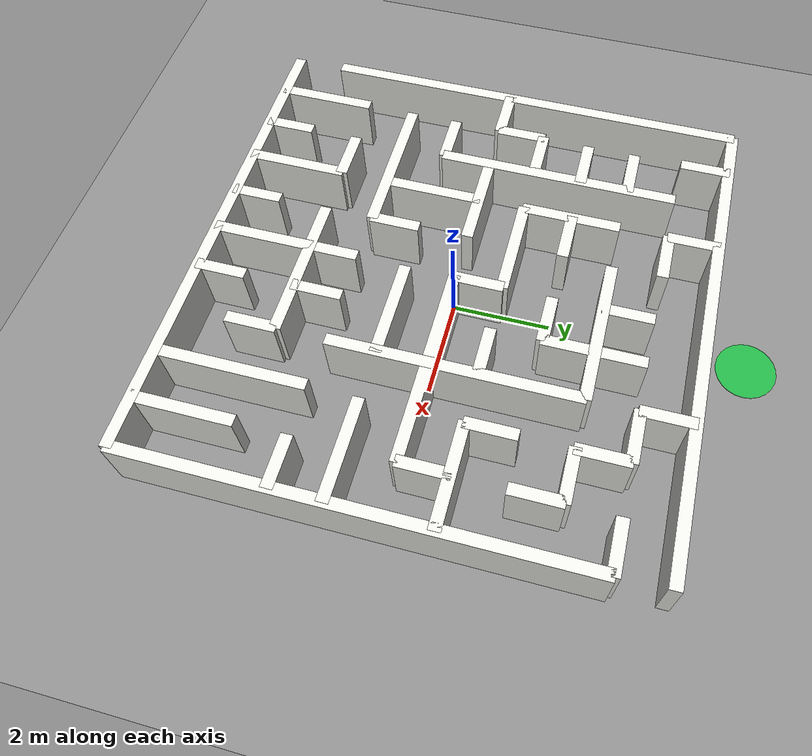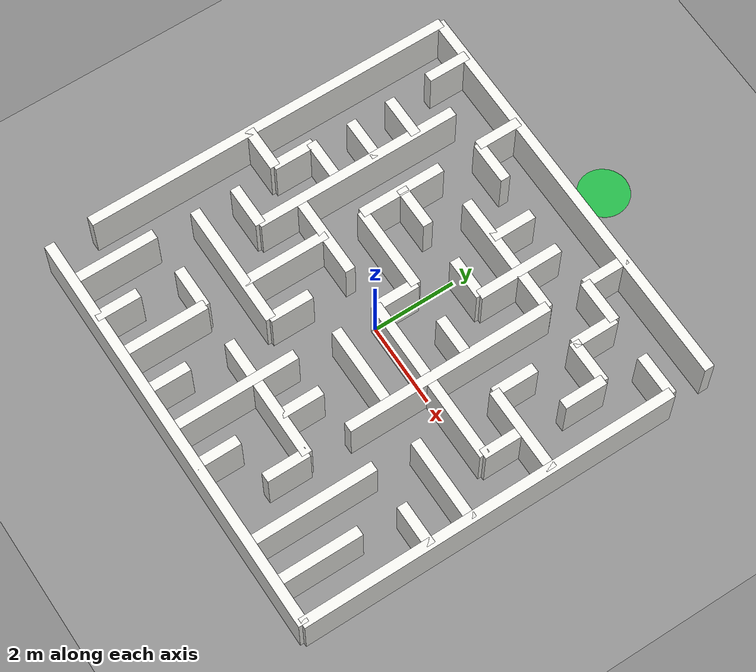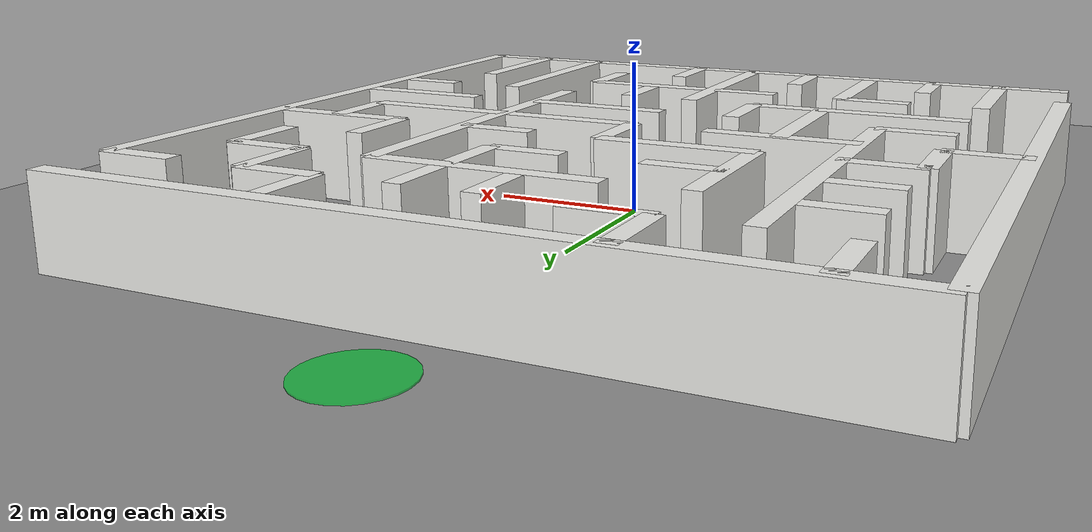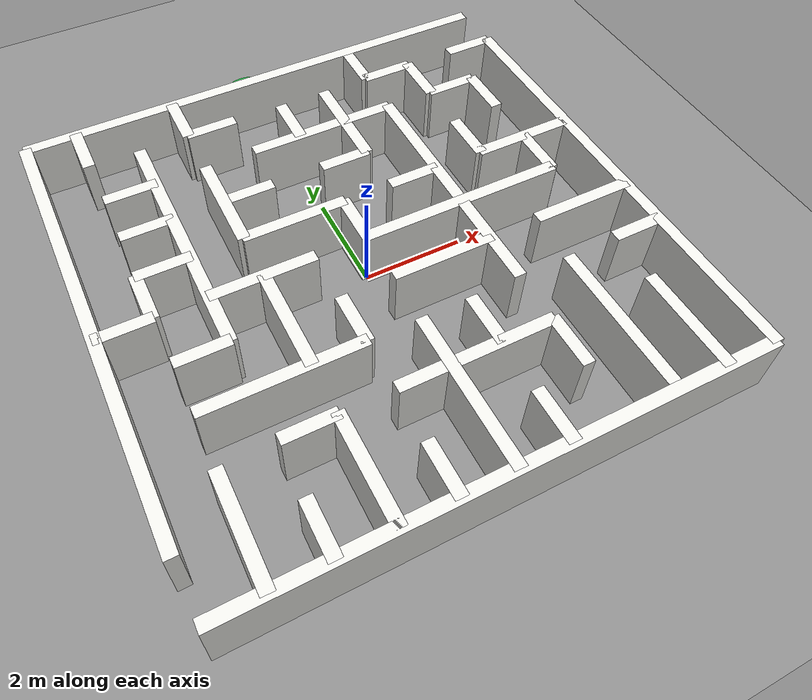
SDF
<sdf version="1.10">
 <world name="tugbot_maze_world_20260528_clean">
  <plugin name="gz::sim::systems::Physics" filename="gz-sim-physics-system"/>
  <plugin name="gz::sim::systems::UserCommands" filename="gz-sim-user-commands-system"/>
  <plugin name="gz::sim::systems::SceneBroadcaster" filename="gz-sim-scene-broadcaster-system"/>
  <plugin name="gz::sim::systems::Sensors" filename="gz-sim-sensors-system">
   <render_engine>ogre2</render_engine>
  </plugin>
  <plugin name="gz::sim::systems::Imu" filename="gz-sim-imu-system"/>
  <scene>
   <shadows>false</shadows>
   <ambient>0.55 0.55 0.55 1</ambient>
   <background>0.70 0.72 0.74 1</background>
  </scene>
  <physics name="3ms" type="ode">
   <max_step_size>0.003</max_step_size>
   <real_time_factor>1</real_time_factor>
   <real_time_update_rate>1000</real_time_update_rate>
  </physics>
  <gravity>0 0 -9.8</gravity>
  <atmosphere type="adiabatic"/>
  <model name="ground_plane">
   <static>true</static>
   <link name="link">
    <collision name="collision">
     <geometry><plane><normal>0 0 1</normal><size>1 1</size></plane></geometry>
    </collision>
    <visual name="visual">
     <geometry><plane><normal>0 0 1</normal><size>20 20</size></plane></geometry>
     <material><ambient>0.55 0.55 0.55 1</ambient><diffuse>0.55 0.55 0.55 1</diffuse></material>
    </visual>
   </link>
  </model>
  <model name="maze_exit_marker">
   <static>true</static>
   <pose>0.000 6.000 0.01 0 0 0</pose>
   <link name="link">
    <visual name="visual">
     <geometry><cylinder><radius>0.600</radius><length>0.02</length></cylinder></geometry>
     <material><ambient>0 0.8 0.2 0.7</ambient><diffuse>0 0.8 0.2 0.7</diffuse></material>
    </visual>
   </link>
  </model>
  <model name="maze_wall_outer_001_outer_001">
   <static>true</static>
   <pose>-0.017 4.997 0.600 0 0 0</pose>
   <link name="link">
    <collision name="collision"><geometry><box><size>10.028 0.240 1.200</size></box></geometry></collision>
    <visual name="visual">
     <geometry><box><size>10.028 0.240 1.200</size></box></geometry>
     <material>
      <ambient>0.92 0.92 0.90 1</ambient>
      <diffuse>0.92 0.92 0.90 1</diffuse>
      <specular>0.2 0.2 0.2 1</specular>
     </material>
    </visual>
   </link>
  </model>
  <model name="maze_wall_seg_002_h_001">
   <static>true</static>
   <pose>-1.504 3.994 0.600 0 0 0</pose>
   <link name="link">
    <collision name="collision"><geometry><box><size>1.036 0.240 1.200</size></box></geometry></collision>
    <visual name="visual">
     <geometry><box><size>1.036 0.240 1.200</size></box></geometry>
     <material>
      <ambient>0.92 0.92 0.90 1</ambient>
      <diffuse>0.92 0.92 0.90 1</diffuse>
      <specular>0.2 0.2 0.2 1</specular>
     </material>
    </visual>
   </link>
  </model>
  <model name="maze_wall_seg_003_h_002">
   <static>true</static>
   <pose>2.490 3.994 0.600 0 0 0</pose>
   <link name="link">
    <collision name="collision"><geometry><box><size>1.070 0.240 1.200</size></box></geometry></collision>
    <visual name="visual">
     <geometry><box><size>1.070 0.240 1.200</size></box></geometry>
     <material>
      <ambient>0.92 0.92 0.90 1</ambient>
      <diffuse>0.92 0.92 0.90 1</diffuse>
      <specular>0.2 0.2 0.2 1</specular>
     </material>
    </visual>
   </link>
  </model>
  <model name="maze_wall_seg_004_h_003">
   <static>true</static>
   <pose>4.513 3.994 0.600 0 0 0</pose>
   <link name="link">
    <collision name="collision"><geometry><box><size>1.036 0.240 1.200</size></box></geometry></collision>
    <visual name="visual">
     <geometry><box><size>1.036 0.240 1.200</size></box></geometry>
     <material>
      <ambient>0.92 0.92 0.90 1</ambient>
      <diffuse>0.92 0.92 0.90 1</diffuse>
      <specular>0.2 0.2 0.2 1</specular>
     </material>
    </visual>
   </link>
  </model>
  <model name="maze_wall_seg_005_h_004">
   <static>true</static>
   <pose>-3.476 2.992 0.600 0 0 0</pose>
   <link name="link">
    <collision name="collision"><geometry><box><size>1.036 0.240 1.200</size></box></geometry></collision>
    <visual name="visual">
     <geometry><box><size>1.036 0.240 1.200</size></box></geometry>
     <material>
      <ambient>0.92 0.92 0.90 1</ambient>
      <diffuse>0.92 0.92 0.90 1</diffuse>
      <specular>0.2 0.2 0.2 1</specular>
     </material>
    </visual>
   </link>
  </model>
  <model name="maze_wall_seg_006_h_005">
   <static>true</static>
   <pose>0.518 2.992 0.600 0 0 0</pose>
   <link name="link">
    <collision name="collision"><geometry><box><size>3.008 0.240 1.200</size></box></geometry></collision>
    <visual name="visual">
     <geometry><box><size>3.008 0.240 1.200</size></box></geometry>
     <material>
      <ambient>0.92 0.92 0.90 1</ambient>
      <diffuse>0.92 0.92 0.90 1</diffuse>
      <specular>0.2 0.2 0.2 1</specular>
     </material>
    </visual>
   </link>
  </model>
  <model name="maze_wall_seg_007_h_006">
   <static>true</static>
   <pose>3.493 2.992 0.600 0 0 0</pose>
   <link name="link">
    <collision name="collision"><geometry><box><size>1.070 0.240 1.200</size></box></geometry></collision>
    <visual name="visual">
     <geometry><box><size>1.070 0.240 1.200</size></box></geometry>
     <material>
      <ambient>0.92 0.92 0.90 1</ambient>
      <diffuse>0.92 0.92 0.90 1</diffuse>
      <specular>0.2 0.2 0.2 1</specular>
     </material>
    </visual>
   </link>
  </model>
  <model name="maze_wall_seg_008_h_007">
   <static>true</static>
   <pose>-3.476 1.989 0.600 0 0 0</pose>
   <link name="link">
    <collision name="collision"><geometry><box><size>1.036 0.240 1.200</size></box></geometry></collision>
    <visual name="visual">
     <geometry><box><size>1.036 0.240 1.200</size></box></geometry>
     <material>
      <ambient>0.92 0.92 0.90 1</ambient>
      <diffuse>0.92 0.92 0.90 1</diffuse>
      <specular>0.2 0.2 0.2 1</specular>
     </material>
    </visual>
   </link>
  </model>
  <model name="maze_wall_seg_009_h_008">
   <static>true</static>
   <pose>-1.504 1.989 0.600 0 0 0</pose>
   <link name="link">
    <collision name="collision"><geometry><box><size>1.036 0.240 1.200</size></box></geometry></collision>
    <visual name="visual">
     <geometry><box><size>1.036 0.240 1.200</size></box></geometry>
     <material>
      <ambient>0.92 0.92 0.90 1</ambient>
      <diffuse>0.92 0.92 0.90 1</diffuse>
      <specular>0.2 0.2 0.2 1</specular>
     </material>
    </visual>
   </link>
  </model>
  <model name="maze_wall_seg_010_h_009">
   <static>true</static>
   <pose>0.518 1.989 0.600 0 0 0</pose>
   <link name="link">
    <collision name="collision"><geometry><box><size>1.003 0.240 1.200</size></box></geometry></collision>
    <visual name="visual">
     <geometry><box><size>1.003 0.240 1.200</size></box></geometry>
     <material>
      <ambient>0.92 0.92 0.90 1</ambient>
      <diffuse>0.92 0.92 0.90 1</diffuse>
      <specular>0.2 0.2 0.2 1</specular>
     </material>
    </visual>
   </link>
  </model>
  <model name="maze_wall_seg_011_h_010">
   <static>true</static>
   <pose>-3.493 0.986 0.600 0 0 0</pose>
   <link name="link">
    <collision name="collision"><geometry><box><size>1.070 0.240 1.200</size></box></geometry></collision>
    <visual name="visual">
     <geometry><box><size>1.070 0.240 1.200</size></box></geometry>
     <material>
      <ambient>0.92 0.92 0.90 1</ambient>
      <diffuse>0.92 0.92 0.90 1</diffuse>
      <specular>0.2 0.2 0.2 1</specular>
     </material>
    </visual>
   </link>
  </model>
  <model name="maze_wall_seg_012_h_011">
   <static>true</static>
   <pose>-0.986 0.986 0.600 0 0 0</pose>
   <link name="link">
    <collision name="collision"><geometry><box><size>2.072 0.240 1.200</size></box></geometry></collision>
    <visual name="visual">
     <geometry><box><size>2.072 0.240 1.200</size></box></geometry>
     <material>
      <ambient>0.92 0.92 0.90 1</ambient>
      <diffuse>0.92 0.92 0.90 1</diffuse>
      <specular>0.2 0.2 0.2 1</specular>
     </material>
    </visual>
   </link>
  </model>
  <model name="maze_wall_seg_013_h_012">
   <static>true</static>
   <pose>1.504 0.986 0.600 0 0 0</pose>
   <link name="link">
    <collision name="collision"><geometry><box><size>1.036 0.240 1.200</size></box></geometry></collision>
    <visual name="visual">
     <geometry><box><size>1.036 0.240 1.200</size></box></geometry>
     <material>
      <ambient>0.92 0.92 0.90 1</ambient>
      <diffuse>0.92 0.92 0.90 1</diffuse>
      <specular>0.2 0.2 0.2 1</specular>
     </material>
    </visual>
   </link>
  </model>
  <model name="maze_wall_seg_014_h_013">
   <static>true</static>
   <pose>3.994 0.986 0.600 0 0 0</pose>
   <link name="link">
    <collision name="collision"><geometry><box><size>2.072 0.240 1.200</size></box></geometry></collision>
    <visual name="visual">
     <geometry><box><size>2.072 0.240 1.200</size></box></geometry>
     <material>
      <ambient>0.92 0.92 0.90 1</ambient>
      <diffuse>0.92 0.92 0.90 1</diffuse>
      <specular>0.2 0.2 0.2 1</specular>
     </material>
    </visual>
   </link>
  </model>
  <model name="maze_wall_seg_015_h_014">
   <static>true</static>
   <pose>-4.496 0.017 0.600 0 0 0</pose>
   <link name="link">
    <collision name="collision"><geometry><box><size>1.070 0.240 1.200</size></box></geometry></collision>
    <visual name="visual">
     <geometry><box><size>1.070 0.240 1.200</size></box></geometry>
     <material>
      <ambient>0.92 0.92 0.90 1</ambient>
      <diffuse>0.92 0.92 0.90 1</diffuse>
      <specular>0.2 0.2 0.2 1</specular>
     </material>
    </visual>
   </link>
  </model>
  <model name="maze_wall_seg_016_h_015">
   <static>true</static>
   <pose>-2.006 0.017 0.600 0 0 0</pose>
   <link name="link">
    <collision name="collision"><geometry><box><size>2.039 0.240 1.200</size></box></geometry></collision>
    <visual name="visual">
     <geometry><box><size>2.039 0.240 1.200</size></box></geometry>
     <material>
      <ambient>0.92 0.92 0.90 1</ambient>
      <diffuse>0.92 0.92 0.90 1</diffuse>
      <specular>0.2 0.2 0.2 1</specular>
     </material>
    </visual>
   </link>
  </model>
  <model name="maze_wall_seg_017_h_016">
   <static>true</static>
   <pose>2.006 0.017 0.600 0 0 0</pose>
   <link name="link">
    <collision name="collision"><geometry><box><size>4.045 0.240 1.200</size></box></geometry></collision>
    <visual name="visual">
     <geometry><box><size>4.045 0.240 1.200</size></box></geometry>
     <material>
      <ambient>0.92 0.92 0.90 1</ambient>
      <diffuse>0.92 0.92 0.90 1</diffuse>
      <specular>0.2 0.2 0.2 1</specular>
     </material>
    </visual>
   </link>
  </model>
  <model name="maze_wall_seg_018_h_017">
   <static>true</static>
   <pose>-3.476 -0.986 0.600 0 0 0</pose>
   <link name="link">
    <collision name="collision"><geometry><box><size>1.036 0.240 1.200</size></box></geometry></collision>
    <visual name="visual">
     <geometry><box><size>1.036 0.240 1.200</size></box></geometry>
     <material>
      <ambient>0.92 0.92 0.90 1</ambient>
      <diffuse>0.92 0.92 0.90 1</diffuse>
      <specular>0.2 0.2 0.2 1</specular>
     </material>
    </visual>
   </link>
  </model>
  <model name="maze_wall_seg_019_h_018">
   <static>true</static>
   <pose>1.019 -0.986 0.600 0 0 0</pose>
   <link name="link">
    <collision name="collision"><geometry><box><size>2.006 0.240 1.200</size></box></geometry></collision>
    <visual name="visual">
     <geometry><box><size>2.006 0.240 1.200</size></box></geometry>
     <material>
      <ambient>0.92 0.92 0.90 1</ambient>
      <diffuse>0.92 0.92 0.90 1</diffuse>
      <specular>0.2 0.2 0.2 1</specular>
     </material>
    </visual>
   </link>
  </model>
  <model name="maze_wall_seg_020_h_019">
   <static>true</static>
   <pose>4.011 -0.986 0.600 0 0 0</pose>
   <link name="link">
    <collision name="collision"><geometry><box><size>2.039 0.240 1.200</size></box></geometry></collision>
    <visual name="visual">
     <geometry><box><size>2.039 0.240 1.200</size></box></geometry>
     <material>
      <ambient>0.92 0.92 0.90 1</ambient>
      <diffuse>0.92 0.92 0.90 1</diffuse>
      <specular>0.2 0.2 0.2 1</specular>
     </material>
    </visual>
   </link>
  </model>
  <model name="maze_wall_seg_021_h_020">
   <static>true</static>
   <pose>-2.474 -1.989 0.600 0 0 0</pose>
   <link name="link">
    <collision name="collision"><geometry><box><size>3.042 0.240 1.200</size></box></geometry></collision>
    <visual name="visual">
     <geometry><box><size>3.042 0.240 1.200</size></box></geometry>
     <material>
      <ambient>0.92 0.92 0.90 1</ambient>
      <diffuse>0.92 0.92 0.90 1</diffuse>
      <specular>0.2 0.2 0.2 1</specular>
     </material>
    </visual>
   </link>
  </model>
  <model name="maze_wall_seg_022_h_021">
   <static>true</static>
   <pose>4.513 -1.989 0.600 0 0 0</pose>
   <link name="link">
    <collision name="collision"><geometry><box><size>1.036 0.240 1.200</size></box></geometry></collision>
    <visual name="visual">
     <geometry><box><size>1.036 0.240 1.200</size></box></geometry>
     <material>
      <ambient>0.92 0.92 0.90 1</ambient>
      <diffuse>0.92 0.92 0.90 1</diffuse>
      <specular>0.2 0.2 0.2 1</specular>
     </material>
    </visual>
   </link>
  </model>
  <model name="maze_wall_seg_023_h_022">
   <static>true</static>
   <pose>-2.474 -2.992 0.600 0 0 0</pose>
   <link name="link">
    <collision name="collision"><geometry><box><size>1.036 0.240 1.200</size></box></geometry></collision>
    <visual name="visual">
     <geometry><box><size>1.036 0.240 1.200</size></box></geometry>
     <material>
      <ambient>0.92 0.92 0.90 1</ambient>
      <diffuse>0.92 0.92 0.90 1</diffuse>
      <specular>0.2 0.2 0.2 1</specular>
     </material>
    </visual>
   </link>
  </model>
  <model name="maze_wall_seg_024_h_023">
   <static>true</static>
   <pose>0.518 -2.992 0.600 0 0 0</pose>
   <link name="link">
    <collision name="collision"><geometry><box><size>3.008 0.240 1.200</size></box></geometry></collision>
    <visual name="visual">
     <geometry><box><size>3.008 0.240 1.200</size></box></geometry>
     <material>
      <ambient>0.92 0.92 0.90 1</ambient>
      <diffuse>0.92 0.92 0.90 1</diffuse>
      <specular>0.2 0.2 0.2 1</specular>
     </material>
    </visual>
   </link>
  </model>
  <model name="maze_wall_outer_025_outer_002">
   <static>true</static>
   <pose>0.017 -4.997 0.600 0 0 0</pose>
   <link name="link">
    <collision name="collision"><geometry><box><size>10.028 0.240 1.200</size></box></geometry></collision>
    <visual name="visual">
     <geometry><box><size>10.028 0.240 1.200</size></box></geometry>
     <material>
      <ambient>0.92 0.92 0.90 1</ambient>
      <diffuse>0.92 0.92 0.90 1</diffuse>
      <specular>0.2 0.2 0.2 1</specular>
     </material>
    </visual>
   </link>
  </model>
  <model name="maze_wall_outer_026_outer_003">
   <static>true</static>
   <pose>-4.997 0.518 0.600 0 0 0</pose>
   <link name="link">
    <collision name="collision"><geometry><box><size>0.240 9.025 1.200</size></box></geometry></collision>
    <visual name="visual">
     <geometry><box><size>0.240 9.025 1.200</size></box></geometry>
     <material>
      <ambient>0.92 0.92 0.90 1</ambient>
      <diffuse>0.92 0.92 0.90 1</diffuse>
      <specular>0.2 0.2 0.2 1</specular>
     </material>
    </visual>
   </link>
  </model>
  <model name="maze_wall_seg_027_v_001">
   <static>true</static>
   <pose>-3.994 4.513 0.600 0 0 0</pose>
   <link name="link">
    <collision name="collision"><geometry><box><size>0.240 1.036 1.200</size></box></geometry></collision>
    <visual name="visual">
     <geometry><box><size>0.240 1.036 1.200</size></box></geometry>
     <material>
      <ambient>0.92 0.92 0.90 1</ambient>
      <diffuse>0.92 0.92 0.90 1</diffuse>
      <specular>0.2 0.2 0.2 1</specular>
     </material>
    </visual>
   </link>
  </model>
  <model name="maze_wall_seg_028_v_002">
   <static>true</static>
   <pose>-3.994 0.501 0.600 0 0 0</pose>
   <link name="link">
    <collision name="collision"><geometry><box><size>0.240 1.036 1.200</size></box></geometry></collision>
    <visual name="visual">
     <geometry><box><size>0.240 1.036 1.200</size></box></geometry>
     <material>
      <ambient>0.92 0.92 0.90 1</ambient>
      <diffuse>0.92 0.92 0.90 1</diffuse>
      <specular>0.2 0.2 0.2 1</specular>
     </material>
    </visual>
   </link>
  </model>
  <model name="maze_wall_seg_029_v_003">
   <static>true</static>
   <pose>-3.994 -4.011 0.600 0 0 0</pose>
   <link name="link">
    <collision name="collision"><geometry><box><size>0.240 2.039 1.200</size></box></geometry></collision>
    <visual name="visual">
     <geometry><box><size>0.240 2.039 1.200</size></box></geometry>
     <material>
      <ambient>0.92 0.92 0.90 1</ambient>
      <diffuse>0.92 0.92 0.90 1</diffuse>
      <specular>0.2 0.2 0.2 1</specular>
     </material>
    </visual>
   </link>
  </model>
  <model name="maze_wall_seg_030_v_004">
   <static>true</static>
   <pose>-2.992 1.487 0.600 0 0 0</pose>
   <link name="link">
    <collision name="collision"><geometry><box><size>0.240 5.014 1.200</size></box></geometry></collision>
    <visual name="visual">
     <geometry><box><size>0.240 5.014 1.200</size></box></geometry>
     <material>
      <ambient>0.92 0.92 0.90 1</ambient>
      <diffuse>0.92 0.92 0.90 1</diffuse>
      <specular>0.2 0.2 0.2 1</specular>
     </material>
    </visual>
   </link>
  </model>
  <model name="maze_wall_seg_031_v_005">
   <static>true</static>
   <pose>-2.992 -4.513 0.600 0 0 0</pose>
   <link name="link">
    <collision name="collision"><geometry><box><size>0.240 1.036 1.200</size></box></geometry></collision>
    <visual name="visual">
     <geometry><box><size>0.240 1.036 1.200</size></box></geometry>
     <material>
      <ambient>0.92 0.92 0.90 1</ambient>
      <diffuse>0.92 0.92 0.90 1</diffuse>
      <specular>0.2 0.2 0.2 1</specular>
     </material>
    </visual>
   </link>
  </model>
  <model name="maze_wall_seg_032_v_006">
   <static>true</static>
   <pose>-1.989 4.496 0.600 0 0 0</pose>
   <link name="link">
    <collision name="collision"><geometry><box><size>0.240 1.070 1.200</size></box></geometry></collision>
    <visual name="visual">
     <geometry><box><size>0.240 1.070 1.200</size></box></geometry>
     <material>
      <ambient>0.92 0.92 0.90 1</ambient>
      <diffuse>0.92 0.92 0.90 1</diffuse>
      <specular>0.2 0.2 0.2 1</specular>
     </material>
    </visual>
   </link>
  </model>
  <model name="maze_wall_seg_033_v_007">
   <static>true</static>
   <pose>-1.989 1.972 0.600 0 0 0</pose>
   <link name="link">
    <collision name="collision"><geometry><box><size>0.240 2.039 1.200</size></box></geometry></collision>
    <visual name="visual">
     <geometry><box><size>0.240 2.039 1.200</size></box></geometry>
     <material>
      <ambient>0.92 0.92 0.90 1</ambient>
      <diffuse>0.92 0.92 0.90 1</diffuse>
      <specular>0.2 0.2 0.2 1</specular>
     </material>
    </visual>
   </link>
  </model>
  <model name="maze_wall_seg_034_v_008">
   <static>true</static>
   <pose>-1.989 -0.986 0.600 0 0 0</pose>
   <link name="link">
    <collision name="collision"><geometry><box><size>0.240 2.072 1.200</size></box></geometry></collision>
    <visual name="visual">
     <geometry><box><size>0.240 2.072 1.200</size></box></geometry>
     <material>
      <ambient>0.92 0.92 0.90 1</ambient>
      <diffuse>0.92 0.92 0.90 1</diffuse>
      <specular>0.2 0.2 0.2 1</specular>
     </material>
    </visual>
   </link>
  </model>
  <model name="maze_wall_seg_035_v_009">
   <static>true</static>
   <pose>-1.989 -3.994 0.600 0 0 0</pose>
   <link name="link">
    <collision name="collision"><geometry><box><size>0.240 2.072 1.200</size></box></geometry></collision>
    <visual name="visual">
     <geometry><box><size>0.240 2.072 1.200</size></box></geometry>
     <material>
      <ambient>0.92 0.92 0.90 1</ambient>
      <diffuse>0.92 0.92 0.90 1</diffuse>
      <specular>0.2 0.2 0.2 1</specular>
     </material>
    </visual>
   </link>
  </model>
  <model name="maze_wall_seg_036_v_010">
   <static>true</static>
   <pose>-0.986 -1.504 0.600 0 0 0</pose>
   <link name="link">
    <collision name="collision"><geometry><box><size>0.240 1.036 1.200</size></box></geometry></collision>
    <visual name="visual">
     <geometry><box><size>0.240 1.036 1.200</size></box></geometry>
     <material>
      <ambient>0.92 0.92 0.90 1</ambient>
      <diffuse>0.92 0.92 0.90 1</diffuse>
      <specular>0.2 0.2 0.2 1</specular>
     </material>
    </visual>
   </link>
  </model>
  <model name="maze_wall_seg_037_v_011">
   <static>true</static>
   <pose>-0.986 -4.513 0.600 0 0 0</pose>
   <link name="link">
    <collision name="collision"><geometry><box><size>0.240 1.036 1.200</size></box></geometry></collision>
    <visual name="visual">
     <geometry><box><size>0.240 1.036 1.200</size></box></geometry>
     <material>
      <ambient>0.92 0.92 0.90 1</ambient>
      <diffuse>0.92 0.92 0.90 1</diffuse>
      <specular>0.2 0.2 0.2 1</specular>
     </material>
    </visual>
   </link>
  </model>
  <model name="maze_wall_seg_038_v_012">
   <static>true</static>
   <pose>0.017 3.476 0.600 0 0 0</pose>
   <link name="link">
    <collision name="collision"><geometry><box><size>0.240 1.036 1.200</size></box></geometry></collision>
    <visual name="visual">
     <geometry><box><size>0.240 1.036 1.200</size></box></geometry>
     <material>
      <ambient>0.92 0.92 0.90 1</ambient>
      <diffuse>0.92 0.92 0.90 1</diffuse>
      <specular>0.2 0.2 0.2 1</specular>
     </material>
    </visual>
   </link>
  </model>
  <model name="maze_wall_seg_039_v_013">
   <static>true</static>
   <pose>0.017 0.501 0.600 0 0 0</pose>
   <link name="link">
    <collision name="collision"><geometry><box><size>0.240 1.036 1.200</size></box></geometry></collision>
    <visual name="visual">
     <geometry><box><size>0.240 1.036 1.200</size></box></geometry>
     <material>
      <ambient>0.92 0.92 0.90 1</ambient>
      <diffuse>0.92 0.92 0.90 1</diffuse>
      <specular>0.2 0.2 0.2 1</specular>
     </material>
    </visual>
   </link>
  </model>
  <model name="maze_wall_seg_040_v_014">
   <static>true</static>
   <pose>0.017 -3.510 0.600 0 0 0</pose>
   <link name="link">
    <collision name="collision"><geometry><box><size>0.240 3.042 1.200</size></box></geometry></collision>
    <visual name="visual">
     <geometry><box><size>0.240 3.042 1.200</size></box></geometry>
     <material>
      <ambient>0.92 0.92 0.90 1</ambient>
      <diffuse>0.92 0.92 0.90 1</diffuse>
      <specular>0.2 0.2 0.2 1</specular>
     </material>
    </visual>
   </link>
  </model>
  <model name="maze_wall_seg_041_v_015">
   <static>true</static>
   <pose>0.986 2.975 0.600 0 0 0</pose>
   <link name="link">
    <collision name="collision"><geometry><box><size>0.240 2.039 1.200</size></box></geometry></collision>
    <visual name="visual">
     <geometry><box><size>0.240 2.039 1.200</size></box></geometry>
     <material>
      <ambient>0.92 0.92 0.90 1</ambient>
      <diffuse>0.92 0.92 0.90 1</diffuse>
      <specular>0.2 0.2 0.2 1</specular>
     </material>
    </visual>
   </link>
  </model>
  <model name="maze_wall_seg_042_v_016">
   <static>true</static>
   <pose>0.986 -2.507 0.600 0 0 0</pose>
   <link name="link">
    <collision name="collision"><geometry><box><size>0.240 1.036 1.200</size></box></geometry></collision>
    <visual name="visual">
     <geometry><box><size>0.240 1.036 1.200</size></box></geometry>
     <material>
      <ambient>0.92 0.92 0.90 1</ambient>
      <diffuse>0.92 0.92 0.90 1</diffuse>
      <specular>0.2 0.2 0.2 1</specular>
     </material>
    </visual>
   </link>
  </model>
  <model name="maze_wall_seg_043_v_017">
   <static>true</static>
   <pose>0.986 -4.513 0.600 0 0 0</pose>
   <link name="link">
    <collision name="collision"><geometry><box><size>0.240 1.036 1.200</size></box></geometry></collision>
    <visual name="visual">
     <geometry><box><size>0.240 1.036 1.200</size></box></geometry>
     <material>
      <ambient>0.92 0.92 0.90 1</ambient>
      <diffuse>0.92 0.92 0.90 1</diffuse>
      <specular>0.2 0.2 0.2 1</specular>
     </material>
    </visual>
   </link>
  </model>
  <model name="maze_wall_seg_044_v_018">
   <static>true</static>
   <pose>1.989 4.496 0.600 0 0 0</pose>
   <link name="link">
    <collision name="collision"><geometry><box><size>0.240 1.070 1.200</size></box></geometry></collision>
    <visual name="visual">
     <geometry><box><size>0.240 1.070 1.200</size></box></geometry>
     <material>
      <ambient>0.92 0.92 0.90 1</ambient>
      <diffuse>0.92 0.92 0.90 1</diffuse>
      <specular>0.2 0.2 0.2 1</specular>
     </material>
    </visual>
   </link>
  </model>
  <model name="maze_wall_seg_045_v_019">
   <static>true</static>
   <pose>1.989 0.518 0.600 0 0 0</pose>
   <link name="link">
    <collision name="collision"><geometry><box><size>0.240 5.014 1.200</size></box></geometry></collision>
    <visual name="visual">
     <geometry><box><size>0.240 5.014 1.200</size></box></geometry>
     <material>
      <ambient>0.92 0.92 0.90 1</ambient>
      <diffuse>0.92 0.92 0.90 1</diffuse>
      <specular>0.2 0.2 0.2 1</specular>
     </material>
    </visual>
   </link>
  </model>
  <model name="maze_wall_seg_046_v_020">
   <static>true</static>
   <pose>1.989 -3.476 0.600 0 0 0</pose>
   <link name="link">
    <collision name="collision"><geometry><box><size>0.240 1.036 1.200</size></box></geometry></collision>
    <visual name="visual">
     <geometry><box><size>0.240 1.036 1.200</size></box></geometry>
     <material>
      <ambient>0.92 0.92 0.90 1</ambient>
      <diffuse>0.92 0.92 0.90 1</diffuse>
      <specular>0.2 0.2 0.2 1</specular>
     </material>
    </visual>
   </link>
  </model>
  <model name="maze_wall_seg_047_v_021">
   <static>true</static>
   <pose>2.992 3.493 0.600 0 0 0</pose>
   <link name="link">
    <collision name="collision"><geometry><box><size>0.240 1.070 1.200</size></box></geometry></collision>
    <visual name="visual">
     <geometry><box><size>0.240 1.070 1.200</size></box></geometry>
     <material>
      <ambient>0.92 0.92 0.90 1</ambient>
      <diffuse>0.92 0.92 0.90 1</diffuse>
      <specular>0.2 0.2 0.2 1</specular>
     </material>
    </visual>
   </link>
  </model>
  <model name="maze_wall_seg_048_v_022">
   <static>true</static>
   <pose>2.992 1.471 0.600 0 0 0</pose>
   <link name="link">
    <collision name="collision"><geometry><box><size>0.240 1.036 1.200</size></box></geometry></collision>
    <visual name="visual">
     <geometry><box><size>0.240 1.036 1.200</size></box></geometry>
     <material>
      <ambient>0.92 0.92 0.90 1</ambient>
      <diffuse>0.92 0.92 0.90 1</diffuse>
      <specular>0.2 0.2 0.2 1</specular>
     </material>
    </visual>
   </link>
  </model>
  <model name="maze_wall_seg_049_v_023">
   <static>true</static>
   <pose>2.992 -3.510 0.600 0 0 0</pose>
   <link name="link">
    <collision name="collision"><geometry><box><size>0.240 3.042 1.200</size></box></geometry></collision>
    <visual name="visual">
     <geometry><box><size>0.240 3.042 1.200</size></box></geometry>
     <material>
      <ambient>0.92 0.92 0.90 1</ambient>
      <diffuse>0.92 0.92 0.90 1</diffuse>
      <specular>0.2 0.2 0.2 1</specular>
     </material>
    </visual>
   </link>
  </model>
  <model name="maze_wall_seg_050_v_024">
   <static>true</static>
   <pose>3.994 2.507 0.600 0 0 0</pose>
   <link name="link">
    <collision name="collision"><geometry><box><size>0.240 1.036 1.200</size></box></geometry></collision>
    <visual name="visual">
     <geometry><box><size>0.240 1.036 1.200</size></box></geometry>
     <material>
      <ambient>0.92 0.92 0.90 1</ambient>
      <diffuse>0.92 0.92 0.90 1</diffuse>
      <specular>0.2 0.2 0.2 1</specular>
     </material>
    </visual>
   </link>
  </model>
  <model name="maze_wall_seg_051_v_025">
   <static>true</static>
   <pose>3.994 0.501 0.600 0 0 0</pose>
   <link name="link">
    <collision name="collision"><geometry><box><size>0.240 1.036 1.200</size></box></geometry></collision>
    <visual name="visual">
     <geometry><box><size>0.240 1.036 1.200</size></box></geometry>
     <material>
      <ambient>0.92 0.92 0.90 1</ambient>
      <diffuse>0.92 0.92 0.90 1</diffuse>
      <specular>0.2 0.2 0.2 1</specular>
     </material>
    </visual>
   </link>
  </model>
  <model name="maze_wall_seg_052_v_026">
   <static>true</static>
   <pose>3.994 -4.011 0.600 0 0 0</pose>
   <link name="link">
    <collision name="collision"><geometry><box><size>0.240 2.039 1.200</size></box></geometry></collision>
    <visual name="visual">
     <geometry><box><size>0.240 2.039 1.200</size></box></geometry>
     <material>
      <ambient>0.92 0.92 0.90 1</ambient>
      <diffuse>0.92 0.92 0.90 1</diffuse>
      <specular>0.2 0.2 0.2 1</specular>
     </material>
    </visual>
   </link>
  </model>
  <model name="maze_wall_outer_053_outer_004">
   <static>true</static>
   <pose>4.997 -0.501 0.600 0 0 0</pose>
   <link name="link">
    <collision name="collision"><geometry><box><size>0.240 9.058 1.200</size></box></geometry></collision>
    <visual name="visual">
     <geometry><box><size>0.240 9.058 1.200</size></box></geometry>
     <material>
      <ambient>0.92 0.92 0.90 1</ambient>
      <diffuse>0.92 0.92 0.90 1</diffuse>
      <specular>0.2 0.2 0.2 1</specular>
     </material>
    </visual>
   </link>
  </model>
  <light name="sun" type="directional">
   <cast_shadows>false</cast_shadows>
   <pose>0 0 10 0 0 0</pose>
   <diffuse>0.8 0.8 0.8 1</diffuse>
   <specular>0.2 0.2 0.2 1</specular>
   <attenuation>
    <range>1000</range>
    <constant>0.9</constant>
    <linear>0.01</linear>
    <quadratic>0.001</quadratic>
   </attenuation>
   <direction>-0.5 0.1 -0.9</direction>
  </light>
 </world>
</sdf>
